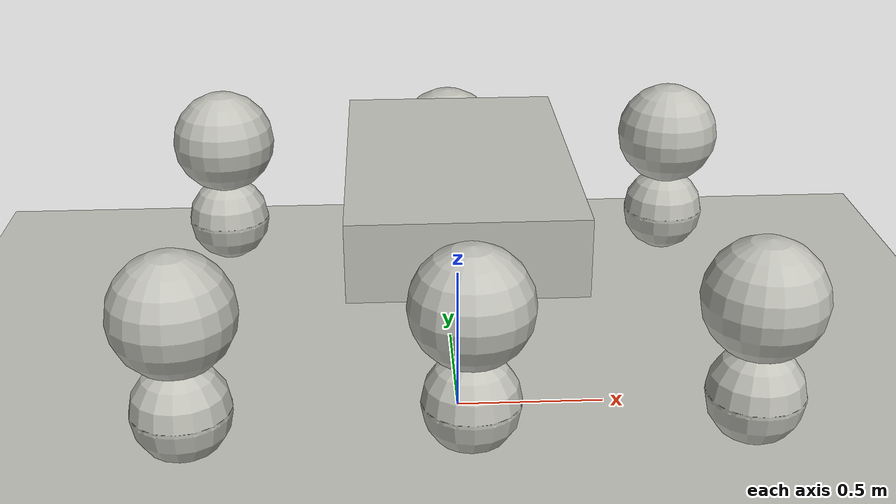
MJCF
<mujoco model="Hexapod_v01">
  <compiler angle="radian" autolimits="true" inertiafromgeom="auto"/>
  <option timestep="0.005" gravity="0 0 -9.81" integrator="implicitfast" cone="pyramidal"/>
  <size memory="16M"/>
  <visual><global offwidth="1280" offheight="720"/></visual>
  <default>
    <geom condim="3" friction="0.6 0.005 0.0001" solref="0.01 1" contype="1" conaffinity="1" rgba="0.75 0.75 0.72 1"/>
    <joint type="hinge" limited="true" armature="0" frictionloss="0" solreflimit="0.01 1"/>
  </default>
  <asset>
    <texture name="grid" type="2d" builtin="checker" rgb1="0.32 0.34 0.36" rgb2="0.26 0.28 0.3" width="256" height="256"/>
    <material name="grid" texture="grid" texrepeat="8 8" reflectance="0"/>
  </asset>
  <worldbody>
    <light pos="0 0 6" dir="0 0 -1" directional="true"/>
    <geom name="floor" type="plane" size="50 50 0.1" material="grid" friction="0.6 0.005 0.0001" solref="0.01 1"/>
    <body name="Hexapod_v01" pos="0 0 0.8">
      <freejoint name="root"/>
      <site name="root_site" size="0.02"/>
      <camera name="track" mode="trackcom" pos="-3 0 1.5" xyaxes="0 -1 0 0.45 0 0.9"/>
      <geom name="Hexapod_v01_geom" type="box" size="0.35 0.55 0.12" pos="0 0 0" mass="40"/>
      <body name="Upper_-1_0" pos="-0.816667 0.682 -0.072">
        <joint name="Upper_-1_0" pos="0 0 0.1512" axis="0 1 0" range="-0.698132 0.698132" damping="233.333"/>
        <geom name="Upper_-1_0_geom" type="sphere" size="0.1815" pos="0 0 0" mass="3"/>
        <body name="Lower_-1_0" pos="0 0 -0.3024">
          <joint name="Lower_-1_0" pos="0 0 0.1512" axis="0 1 0" range="-0.872665 0.872665" damping="233.333"/>
          <geom name="Lower_-1_0_geom" type="capsule" size="0.1452" fromto="0 0 -0.006 0 0 0.006" mass="2"/>
        </body>
      </body>
      <body name="Upper_-1_1" pos="0 0.682 -0.072">
        <joint name="Upper_-1_1" pos="0 0 0.1512" axis="0 1 0" range="-0.698132 0.698132" damping="233.333"/>
        <geom name="Upper_-1_1_geom" type="sphere" size="0.1815" pos="0 0 0" mass="3"/>
        <body name="Lower_-1_1" pos="0 0 -0.3024">
          <joint name="Lower_-1_1" pos="0 0 0.1512" axis="0 1 0" range="-0.872665 0.872665" damping="233.333"/>
          <geom name="Lower_-1_1_geom" type="capsule" size="0.1452" fromto="0 0 -0.006 0 0 0.006" mass="2"/>
        </body>
      </body>
      <body name="Upper_-1_2" pos="0.816667 0.682 -0.072">
        <joint name="Upper_-1_2" pos="0 0 0.1512" axis="0 1 0" range="-0.698132 0.698132" damping="233.333"/>
        <geom name="Upper_-1_2_geom" type="sphere" size="0.1815" pos="0 0 0" mass="3"/>
        <body name="Lower_-1_2" pos="0 0 -0.3024">
          <joint name="Lower_-1_2" pos="0 0 0.1512" axis="0 1 0" range="-0.872665 0.872665" damping="233.333"/>
          <geom name="Lower_-1_2_geom" type="capsule" size="0.1452" fromto="0 0 -0.006 0 0 0.006" mass="2"/>
        </body>
      </body>
      <body name="Upper_1_0" pos="-0.816667 -0.682 -0.072">
        <joint name="Upper_1_0" pos="0 0 0.1512" axis="0 1 0" range="-0.698132 0.698132" damping="233.333"/>
        <geom name="Upper_1_0_geom" type="sphere" size="0.1815" pos="0 0 0" mass="3"/>
        <body name="Lower_1_0" pos="0 0 -0.3024">
          <joint name="Lower_1_0" pos="0 0 0.1512" axis="0 1 0" range="-0.872665 0.872665" damping="233.333"/>
          <geom name="Lower_1_0_geom" type="capsule" size="0.1452" fromto="0 0 -0.006 0 0 0.006" mass="2"/>
        </body>
      </body>
      <body name="Upper_1_1" pos="0 -0.682 -0.072">
        <joint name="Upper_1_1" pos="0 0 0.1512" axis="0 1 0" range="-0.698132 0.698132" damping="233.333"/>
        <geom name="Upper_1_1_geom" type="sphere" size="0.1815" pos="0 0 0" mass="3"/>
        <body name="Lower_1_1" pos="0 0 -0.3024">
          <joint name="Lower_1_1" pos="0 0 0.1512" axis="0 1 0" range="-0.872665 0.872665" damping="233.333"/>
          <geom name="Lower_1_1_geom" type="capsule" size="0.1452" fromto="0 0 -0.006 0 0 0.006" mass="2"/>
        </body>
      </body>
      <body name="Upper_1_2" pos="0.816667 -0.682 -0.072">
        <joint name="Upper_1_2" pos="0 0 0.1512" axis="0 1 0" range="-0.698132 0.698132" damping="233.333"/>
        <geom name="Upper_1_2_geom" type="sphere" size="0.1815" pos="0 0 0" mass="3"/>
        <body name="Lower_1_2" pos="0 0 -0.3024">
          <joint name="Lower_1_2" pos="0 0 0.1512" axis="0 1 0" range="-0.872665 0.872665" damping="233.333"/>
          <geom name="Lower_1_2_geom" type="capsule" size="0.1452" fromto="0 0 -0.006 0 0 0.006" mass="2"/>
        </body>
      </body>
    </body>
  </worldbody>
  <actuator>
    <position name="Upper_-1_0" joint="Upper_-1_0" kp="3500" forcerange="-700 700" ctrlrange="-0.785398 0.785398"/>
    <position name="Lower_-1_0" joint="Lower_-1_0" kp="3500" forcerange="-700 700" ctrlrange="-0.785398 0.785398"/>
    <position name="Upper_-1_1" joint="Upper_-1_1" kp="3500" forcerange="-700 700" ctrlrange="-0.785398 0.785398"/>
    <position name="Lower_-1_1" joint="Lower_-1_1" kp="3500" forcerange="-700 700" ctrlrange="-0.785398 0.785398"/>
    <position name="Upper_-1_2" joint="Upper_-1_2" kp="3500" forcerange="-700 700" ctrlrange="-0.785398 0.785398"/>
    <position name="Lower_-1_2" joint="Lower_-1_2" kp="3500" forcerange="-700 700" ctrlrange="-0.785398 0.785398"/>
    <position name="Upper_1_0" joint="Upper_1_0" kp="3500" forcerange="-700 700" ctrlrange="-0.785398 0.785398"/>
    <position name="Lower_1_0" joint="Lower_1_0" kp="3500" forcerange="-700 700" ctrlrange="-0.785398 0.785398"/>
    <position name="Upper_1_1" joint="Upper_1_1" kp="3500" forcerange="-700 700" ctrlrange="-0.785398 0.785398"/>
    <position name="Lower_1_1" joint="Lower_1_1" kp="3500" forcerange="-700 700" ctrlrange="-0.785398 0.785398"/>
    <position name="Upper_1_2" joint="Upper_1_2" kp="3500" forcerange="-700 700" ctrlrange="-0.785398 0.785398"/>
    <position name="Lower_1_2" joint="Lower_1_2" kp="3500" forcerange="-700 700" ctrlrange="-0.785398 0.785398"/>
  </actuator>
  <keyframe>
    <key name="spawn" qpos="0 0 0.8 1 0 0 0 0 0 0 0 0 0 0 0 0 0 0 0" ctrl="0 0 0 0 0 0 0 0 0 0 0 0"/>
    <key name="rest" qpos="0 0 0.5256 1 0 0 0 0 0 0 0 0 0 0 0 0 0 0 0" ctrl="0 0 0 0 0 0 0 0 0 0 0 0"/>
  </keyframe>
</mujoco>
